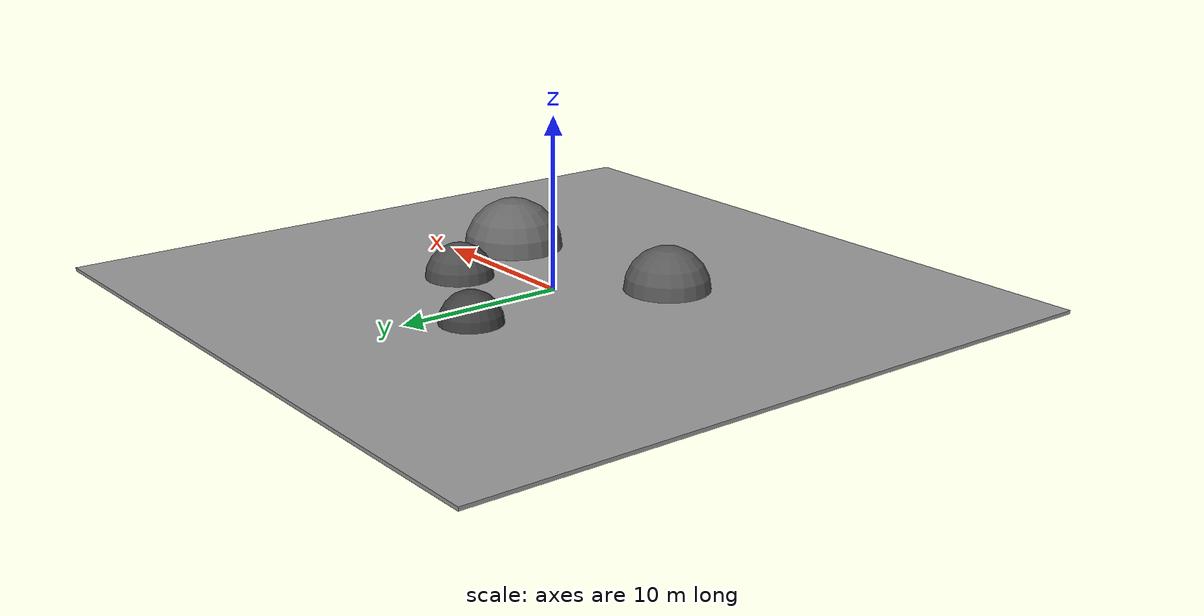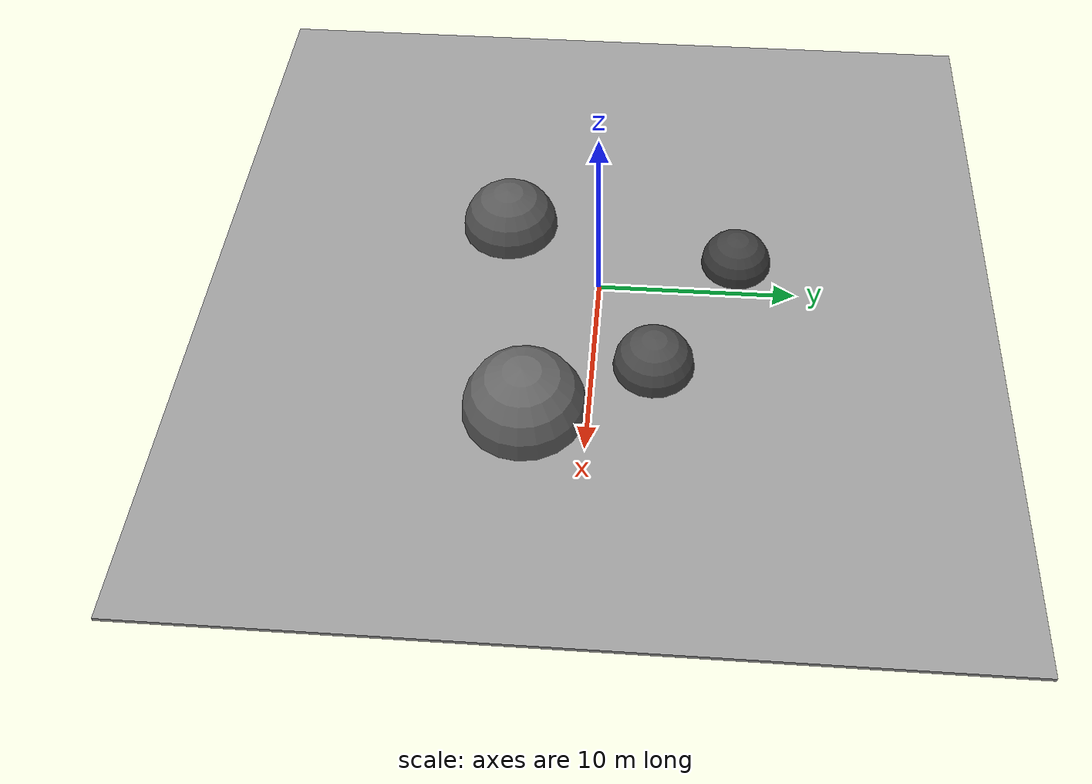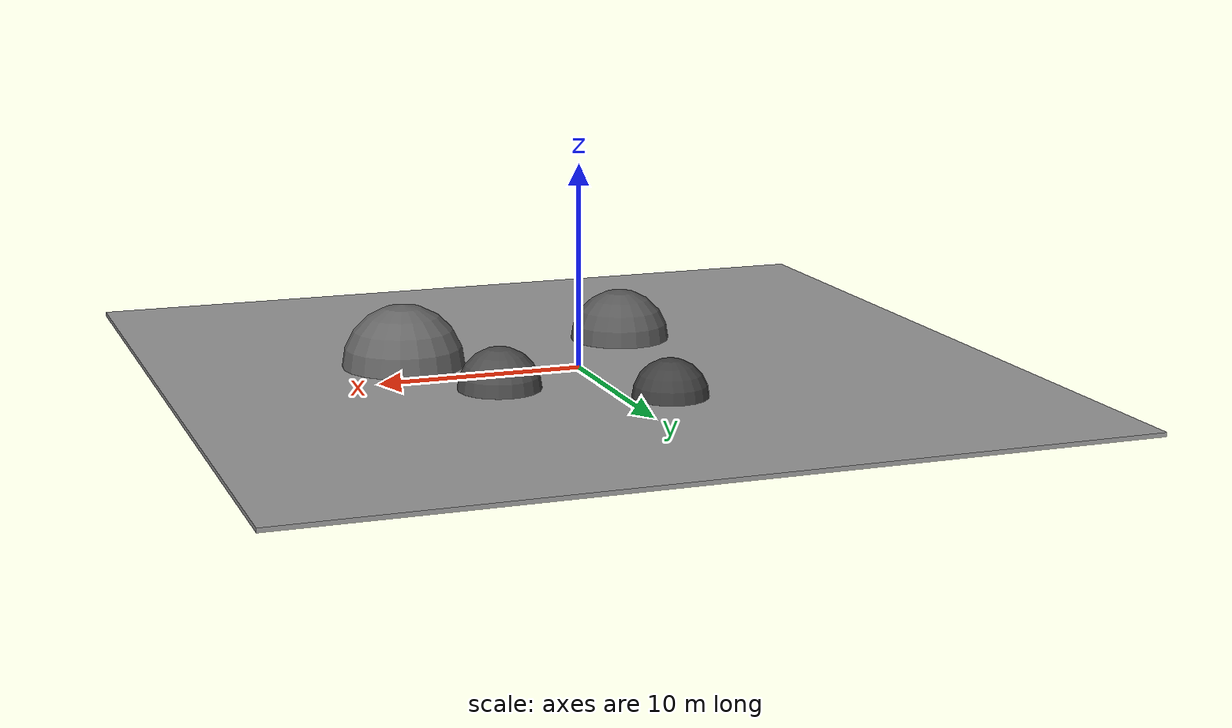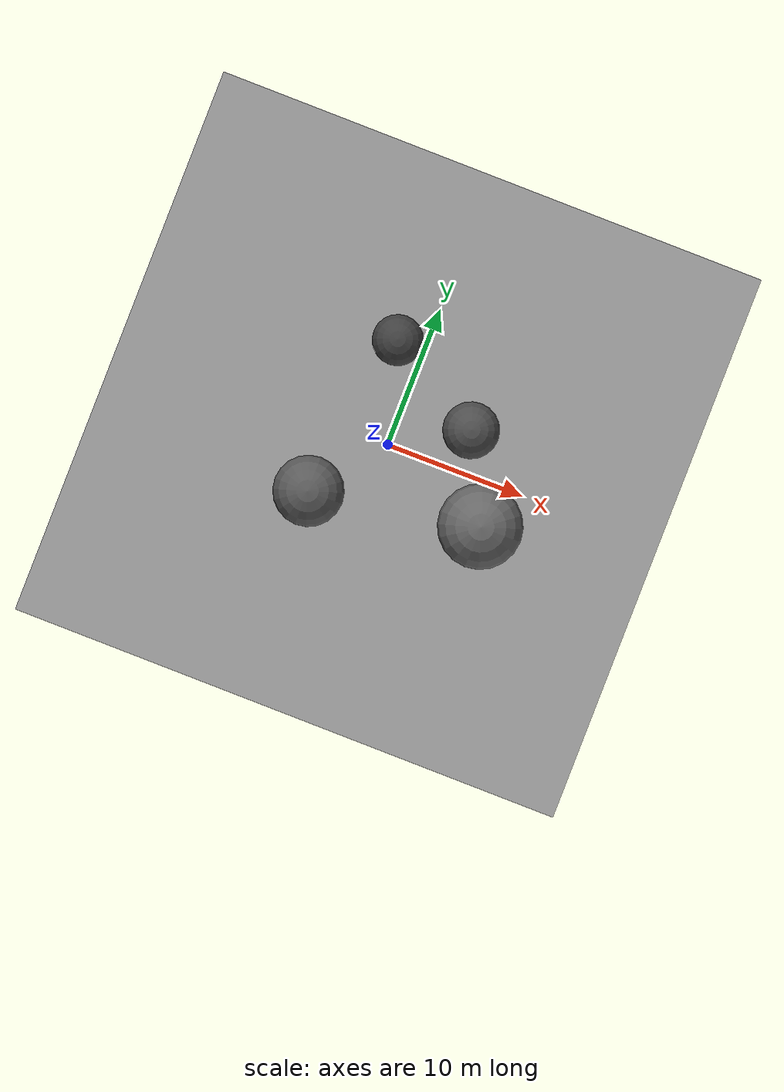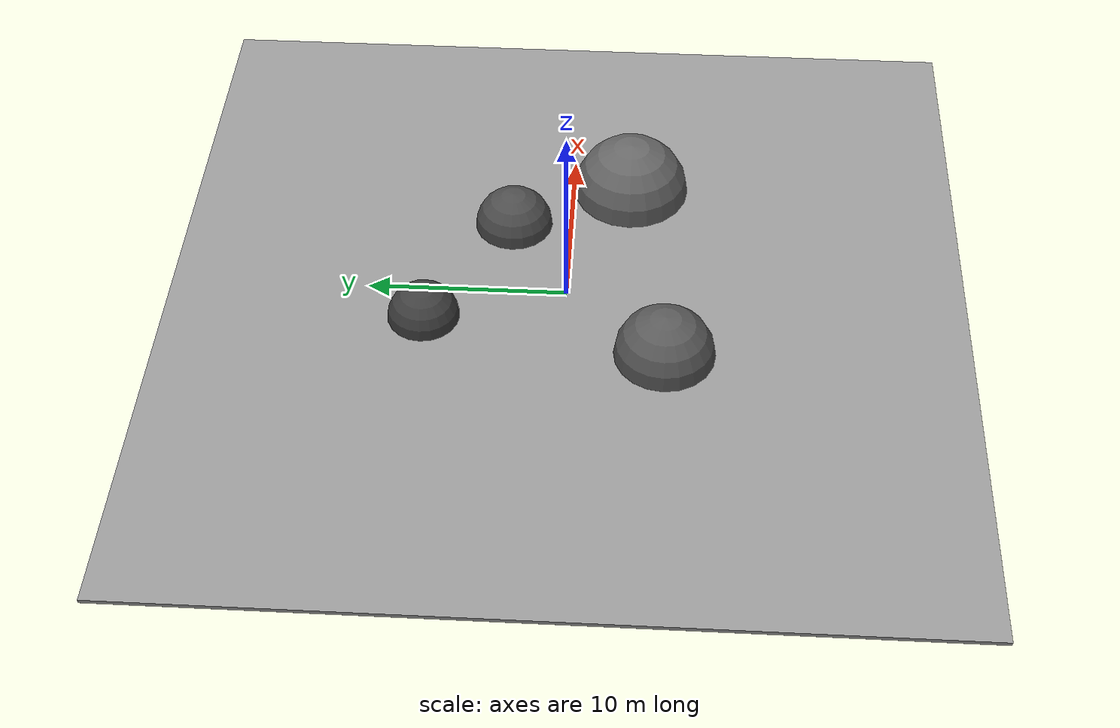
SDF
<?xml version="1.0" ?>
<sdf version="1.9">
<world name="lunar_crater">

  <!-- Lighting -->
  <light type="directional" name="sun">
    <pose>0 0 50 0 0 0</pose>
    <diffuse>0.7 0.7 0.7 1</diffuse>
    <specular>0.1 0.1 0.1 1</specular>
    <direction>0 0 -1</direction>
    <cast_shadows>true</cast_shadows>
  </light>

  <!-- Lunar Surface -->
  <model name="lunar_surface">
    <static>true</static>
    <link name="link">
      <collision name="collision">
        <geometry>
          <box>
            <size>40 40 0.2</size>
          </box>
        </geometry>
      </collision>
      <visual name="visual">
        <geometry>
          <box>
            <size>40 40 0.2</size>
          </box>
        </geometry>
        <material>
          <ambient>0.4 0.4 0.4 1</ambient>
          <diffuse>0.6 0.6 0.6 1</diffuse>
          <specular>0.1 0.1 0.1 1</specular>
        </material>
      </visual>
    </link>
  </model>

  <!-- Crater 1 -->
  <model name="crater_1">
    <pose>5 3 0.1 0 0 0</pose>
    <static>true</static>
    <link name="link">
      <visual name="visual">
        <geometry>
          <sphere>
            <radius>2.0</radius>
          </sphere>
        </geometry>
        <material>
          <ambient>0.2 0.2 0.2 1</ambient>
          <diffuse>0.3 0.3 0.3 1</diffuse>
        </material>
      </visual>
    </link>
  </model>

  <!-- Crater 2 -->
  <model name="crater_2">
    <pose>-4 -5 0.1 0 0 0</pose>
    <static>true</static>
    <link name="link">
      <visual name="visual">
        <geometry>
          <sphere>
            <radius>2.5</radius>
          </sphere>
        </geometry>
        <material>
          <ambient>0.25 0.25 0.25 1</ambient>
          <diffuse>0.35 0.35 0.35 1</diffuse>
        </material>
      </visual>
    </link>
  </model>

  <!-- Crater 3 -->
  <model name="crater_3">
    <pose>-2 7 0.1 0 0 0</pose>
    <static>true</static>
    <link name="link">
      <visual name="visual">
        <geometry>
          <sphere>
            <radius>1.8</radius>
          </sphere>
        </geometry>
        <material>
          <ambient>0.15 0.15 0.15 1</ambient>
          <diffuse>0.25 0.25 0.25 1</diffuse>
        </material>
      </visual>
    </link>
  </model>

  <!-- Crater 4 -->
  <model name="crater_4">
    <pose>8 -3 0.1 0 0 0</pose>
    <static>true</static>
    <link name="link">
      <visual name="visual">
        <geometry>
          <sphere>
            <radius>3.0</radius>
          </sphere>
        </geometry>
        <material>
          <ambient>0.3 0.3 0.3 1</ambient>
          <diffuse>0.4 0.4 0.4 1</diffuse>
        </material>
      </visual>
    </link>
  </model>

</world>
</sdf>
